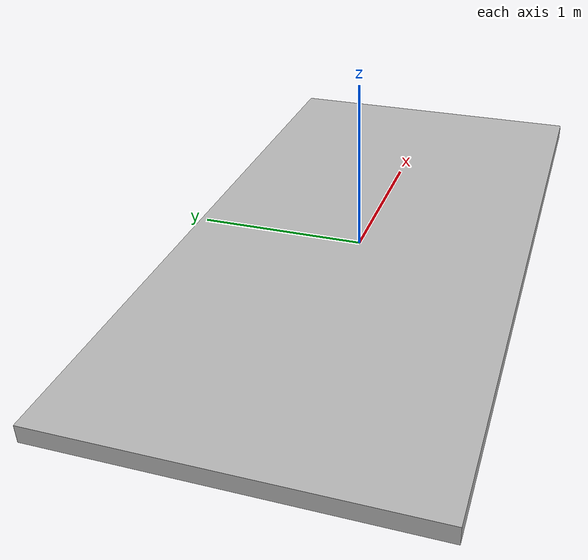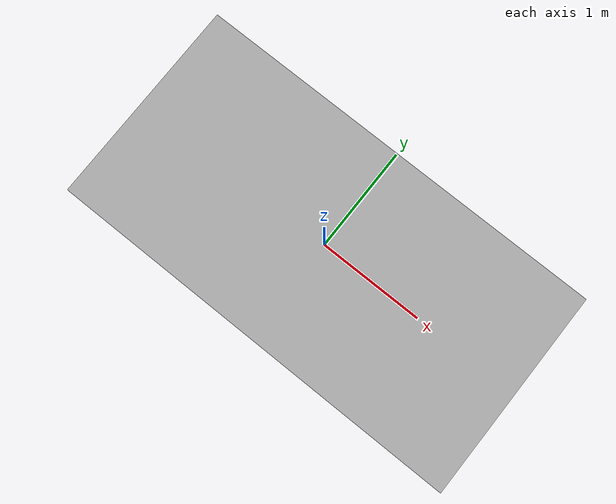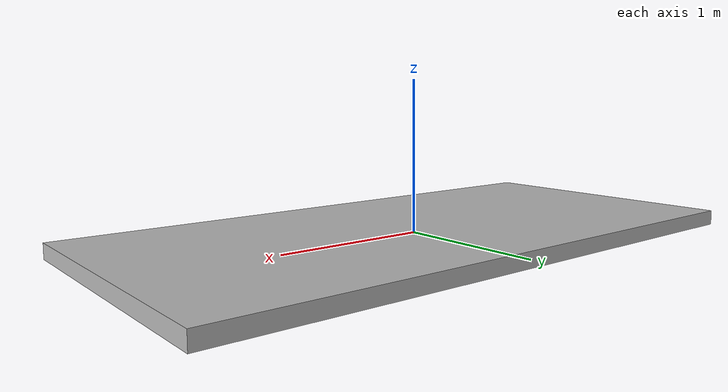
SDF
<?xml version="1.0" ?>
<sdf version="1.5">
  <model name="scaling_box">
    <static>true</static>
    <pose> 0 0 0 0 0 0 </pose>
    <link name="scaling_box_link">
      <collision name="collision">
        <geometry>
          <box>
            <size>4 2 .1 </size>
          </box>
        </geometry>
      </collision>
      <visual name="scaling_box_mesh">
      <cast_shadows>true</cast_shadows>
        <geometry>
         <box>
            <size>4 2 .1 </size>
          </box>
        </geometry>
        <material>
            <script>
            Gazebo/Blue
            </script>
        </material>
      </visual>
    </link>
  </model>
</sdf>
